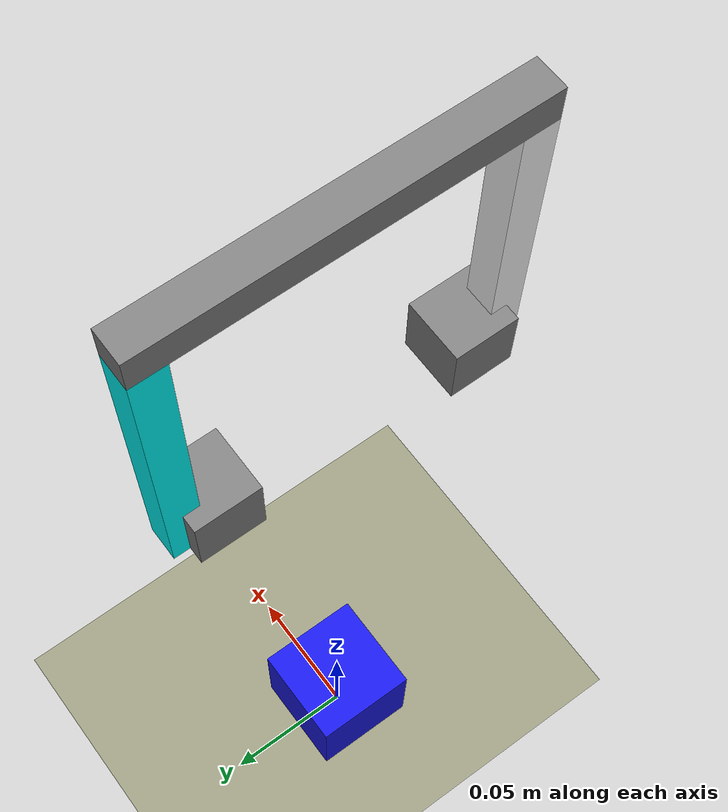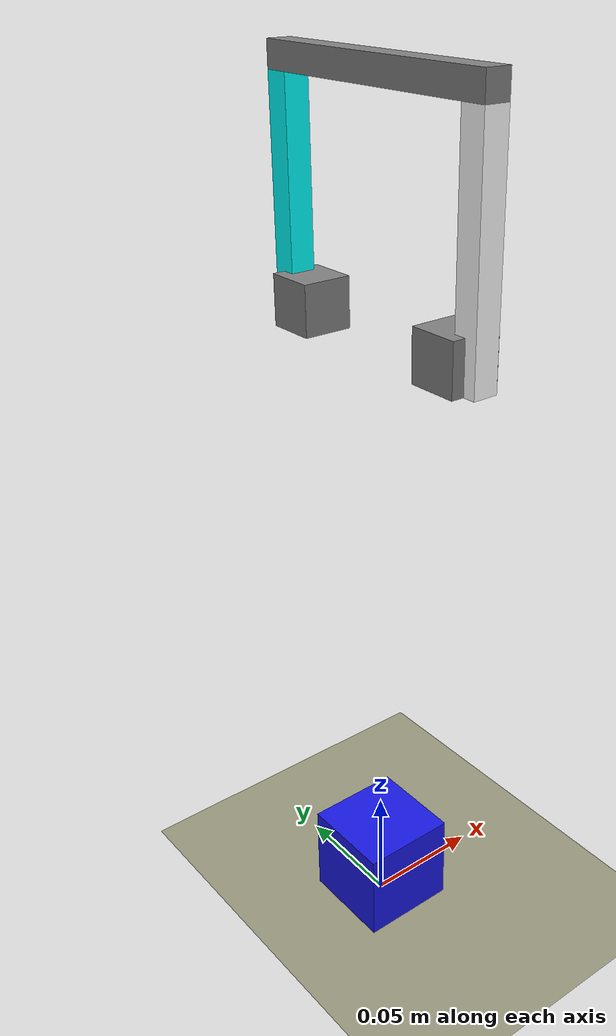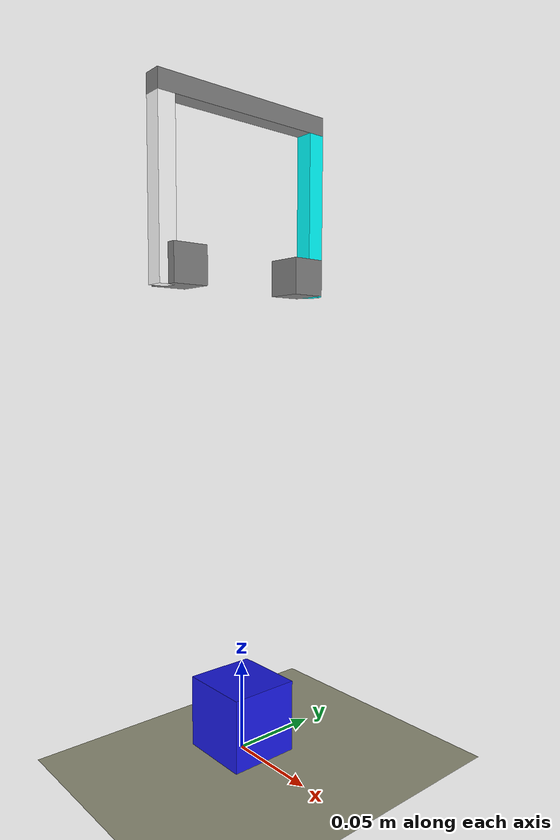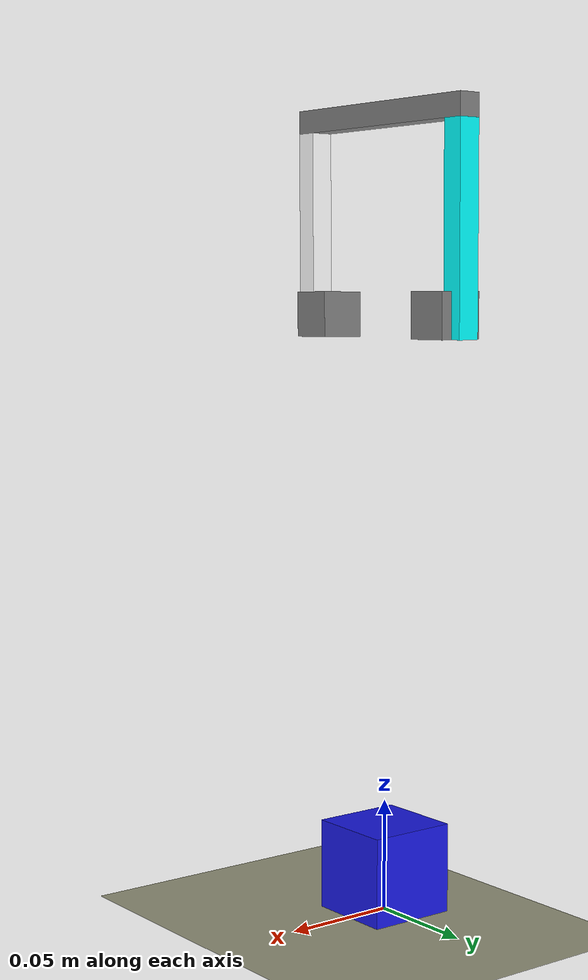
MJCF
<mujoco model="gripper">
    <compiler angle="radian" meshdir="meshes/" />
    <option gravity="0 0 -9.8" />
    <option integrator="RK4" timestep="0.002" iterations="50"/>
    <size njmax="500" nconmax="100" />

    <visual>
        <headlight ambient="0.5 0.5 0.5"  />
    </visual>

    <default>
        <joint limited="true" damping="1" stiffness="0" armature=".1" user="0"/>
        <geom solref="0.008 1" solimp="0.95 0.95 0.01" margin="0.001" user="0"/>
        <motor ctrllimited="true" ctrlrange="-1 1"/>
        <position ctrllimited="true"/>

        <default class='0'>
            <geom friction="1 0.005 0.001" rgba=".75 .6 .5 1" contype="1" conaffinity="0"/>
        </default>

        <default class='1'>
            <geom friction="1 0.005 0.001" rgba=".7 .6 .55 1" contype="1" conaffinity="1"/>
        </default>

    </default>

    <worldbody>

        <geom name="tableTop" type="plane" pos="0 0 0" size="0.5 0.5 0.5" rgba=".6 .6 .5 1" contype="15" conaffinity="15" />

<!--  ================= BEGIN GRIPPER ================= /-->

        <body name="claw" pos="0 0 0.3" quat="1 0 1 0">

            <geom name="rail" type="box" pos="-0.05 0 0" size="0.005 0.055 0.005" friction="0.001 0.005 0.0001" rgba="0.5 0.5 0.5 1.0"/>
            <joint name="vertical" type="slide" pos="0 0 0" axis="1 0 0" range= "-0.25 0.25" limited="true"/>

            <body name="rightclaw" pos="0 -0.05 0" >
                <geom name="rightclaw_it" class="1" type="box" pos="0 0 0" size="0.045 0.005 0.005" friction="0.001 0.005 0.0001" rgba="1.0 1.0 1.0 1.0"/>
                <site name="rightEndeffector" pos="0.035 0.01 0" size="0.01 0.01 0.01" type="box"/>

                <joint name="r_close" type="slide" pos="0 0 0" axis="0 1 0" range= "0 0.04"    limited="true"/>
            </body>

            <body name="leftclaw" pos="0 0.05 0">
                <geom name="leftclaw_it" class="1" type="box" pos="0 0 0" size="0.045 0.005 0.005" friction="0.001 0.005 0.0001" rgba="0.0 1.0 1.0 1.0"/>
                <site name="leftEndeffector" pos="0.035 -0.01 0" size="0.01 0.01 0.01" type="box" />

                <joint name="l_close" type="slide" pos="0 0 0" axis="0 1 0" range= "-0.04 0"  limited="true"/>

            </body>
        </body>

<!--  ================= END GRIPPER ================= /-->

        <body name="block" pos="0 0 0.02">
            <joint name="blockjoint" type="free" limited='false' damping="0" armature="0" />

            <inertial pos="0 0 0" mass=".1" diaginertia="100000 100000 100000"/>
            <geom name="blockbox" type="box" pos="0 0 0"
                  size="0.02 0.02 0.02" rgba=".1 .1 .9 1" contype="1" conaffinity="1"
            />

        </body>

    </worldbody>

    <sensor>
        <touch name="rightSensor" site="rightEndeffector"/>
        <touch name="leftSensor" site="leftEndeffector"/>

    </sensor>

    <actuator>

        <motor gear="10" joint="vertical" ctrllimited="true" ctrlrange="-1 1.2"/>
        <motor gear="10" joint="r_close" ctrllimited="true" ctrlrange="-1 1"/>
        <motor gear="10" joint="l_close" ctrllimited="true" ctrlrange="-1 1"/>

    </actuator>

</mujoco>
